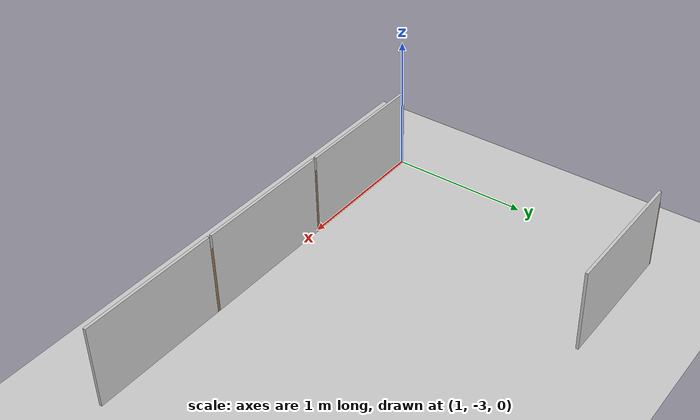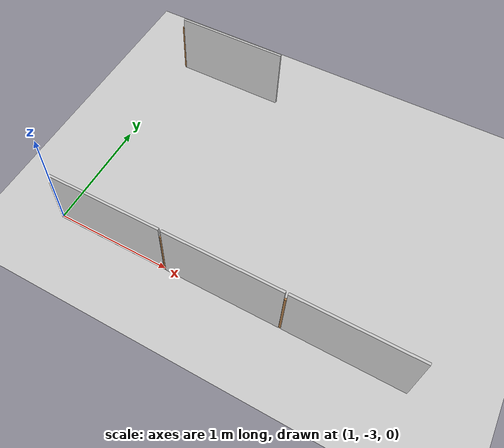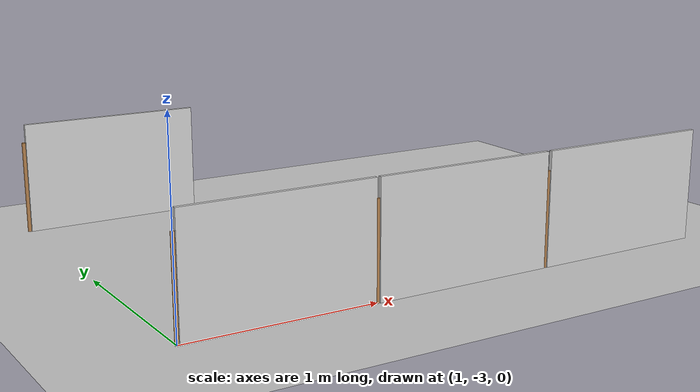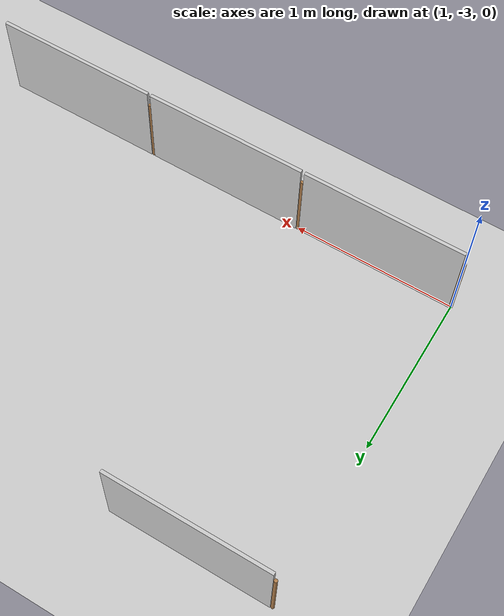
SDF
<sdf version="1.7">
 <world name="default">
  <model name="ground_plane">
   <static>true</static>
   <link name="link">
    <collision name="collision">
     <geometry><plane><normal>0 0 1</normal><size>1 1</size></plane></geometry>
    </collision>
    <visual name="visual">
     <geometry><plane><normal>0 0 1</normal><size>100 100</size></plane></geometry>
     <material>
      <ambient>0.8 0.8 0.8 1</ambient>
      <diffuse>0.8 0.8 0.8 1</diffuse>
      <specular>0.8 0.8 0.8 1</specular>
     </material>
    </visual>
    <inertial>
     <mass>1</mass>
     <inertia><ixx>1</ixx><ixy>0</ixy><ixz>0</ixz><iyy>1</iyy><iyz>0</iyz><izz>1</izz></inertia>
    </inertial>
   </link>
  </model>
  <model name="maze_1_6x5_clone_2_clone_clone_clone_0">
   <frame name="plywood_panel_0_0_b::__model__" attached_to="plywood_panel_0_0_b::main">
    <pose relative_to="__model__">0 0 0 0 -0 1.571</pose>
   </frame>
   <static>true</static>
   <link name="plywood_panel_0_0_b::main">
    <pose relative_to="plywood_panel_0_0_b::__model__">0 0 0 0 -0 0</pose>
    <collision name="collision">
     <pose>0 -0.5 0.3 -1.571 -0 -1.571</pose>
     <geometry><box><size>0.98 0.6 0.02</size></box></geometry>
    </collision>
    <visual name="visual">
     <pose>0.01 -0.01 0 3.14159 -1.57059 3.14159</pose>
     <geometry>
      <mesh>
       <scale>1 1 1</scale>
       <uri>/home/mayank/cognipilot/cranium/src/dream_world/models/plywood_panel/meshes/plywood.dae</uri>
      </mesh>
     </geometry>
    </visual>
   </link>
   <frame name="wooden_joint_0_0_b::__model__" attached_to="wooden_joint_0_0_b::link_0">
    <pose relative_to="__model__">0 0 0 0 -0 0</pose>
   </frame>
   <link name="wooden_joint_0_0_b::link_0">
    <pose relative_to="wooden_joint_0_0_b::__model__">0 0 0.25 0 -0 0</pose>
    <inertial>
     <mass>0.00215981</mass>
     <inertia>
      <ixx>0.00018028</ixx>
      <ixy>0</ixy>
      <ixz>0</ixz>
      <iyy>0.00018028</iyy>
      <iyz>0</iyz>
      <izz>5.8e-07</izz>
     </inertia>
    </inertial>
    <visual name="visual">
     <geometry><cylinder><radius>0.01</radius><length>0.5</length></cylinder></geometry>
     <material>
      <lighting>1</lighting>
      <script><uri>file://media/materials/scripts/gazebo.material</uri><name>Gazebo/Wood</name></script>
      <shader type="pixel"><normal_map>__default__</normal_map></shader>
      <ambient>0.3 0.3 0.3 1</ambient>
      <diffuse>0.7 0.7 0.7 1</diffuse>
      <specular>0.01 0.01 0.01 1</specular>
      <emissive>0 0 0 1</emissive>
     </material>
    </visual>
    <collision name="collision">
     <geometry><cylinder><radius>0.01</radius><length>0.5</length></cylinder></geometry>
     <surface>
      <friction>
       <ode><mu>1</mu><mu2>1</mu2><fdir1>0 0 0</fdir1><slip1>0</slip1><slip2>0</slip2></ode>
       <torsional>
        <coefficient>1</coefficient>
        <patch_radius>0</patch_radius>
        <surface_radius>0</surface_radius>
        <use_patch_radius>1</use_patch_radius>
        <ode><slip>0</slip></ode>
       </torsional>
      </friction>
      <bounce><restitution_coefficient>0</restitution_coefficient><threshold>1e+06</threshold></bounce>
      <contact>
       <collide_without_contact>0</collide_without_contact>
       <collide_without_contact_bitmask>1</collide_without_contact_bitmask>
       <collide_bitmask>1</collide_bitmask>
       <ode>
        <soft_cfm>0</soft_cfm>
        <soft_erp>0.2</soft_erp>
        <kp>1e+13</kp>
        <kd>1</kd>
        <max_vel>0.01</max_vel>
        <min_depth>0</min_depth>
       </ode>
       <bullet>
        <split_impulse>1</split_impulse>
        <split_impulse_penetration_threshold>-0.01</split_impulse_penetration_threshold>
        <soft_cfm>0</soft_cfm>
        <soft_erp>0.2</soft_erp>
        <kp>1e+13</kp>
        <kd>1</kd>
       </bullet>
      </contact>
     </surface>
    </collision>
   </link>
   <static>true</static>
   <pose>1 -3 0 0 0 -4e-06</pose>
  </model>
  <model name="maze_1_6x5_clone_2_clone_clone_clone_1">
   <frame name="plywood_panel_0_0_b::__model__" attached_to="plywood_panel_0_0_b::main">
    <pose relative_to="__model__">0 0 0 0 -0 1.571</pose>
   </frame>
   <static>true</static>
   <link name="plywood_panel_0_0_b::main">
    <pose relative_to="plywood_panel_0_0_b::__model__">0 0 0 0 -0 0</pose>
    <collision name="collision">
     <pose>0 -0.5 0.3 -1.571 -0 -1.571</pose>
     <geometry><box><size>0.98 0.6 0.02</size></box></geometry>
    </collision>
    <visual name="visual">
     <pose>0.01 -0.01 0 3.14159 -1.57059 3.14159</pose>
     <geometry>
      <mesh>
       <scale>1 1 1</scale>
       <uri>/home/mayank/cognipilot/cranium/src/dream_world/models/plywood_panel/meshes/plywood.dae</uri>
      </mesh>
     </geometry>
    </visual>
   </link>
   <frame name="wooden_joint_0_0_b::__model__" attached_to="wooden_joint_0_0_b::link_0">
    <pose relative_to="__model__">0 0 0 0 -0 0</pose>
   </frame>
   <link name="wooden_joint_0_0_b::link_0">
    <pose relative_to="wooden_joint_0_0_b::__model__">0 0 0.25 0 -0 0</pose>
    <inertial>
     <mass>0.00215981</mass>
     <inertia>
      <ixx>0.00018028</ixx>
      <ixy>0</ixy>
      <ixz>0</ixz>
      <iyy>0.00018028</iyy>
      <iyz>0</iyz>
      <izz>5.8e-07</izz>
     </inertia>
    </inertial>
    <visual name="visual">
     <geometry><cylinder><radius>0.01</radius><length>0.5</length></cylinder></geometry>
     <material>
      <lighting>1</lighting>
      <script><uri>file://media/materials/scripts/gazebo.material</uri><name>Gazebo/Wood</name></script>
      <shader type="pixel"><normal_map>__default__</normal_map></shader>
      <ambient>0.3 0.3 0.3 1</ambient>
      <diffuse>0.7 0.7 0.7 1</diffuse>
      <specular>0.01 0.01 0.01 1</specular>
      <emissive>0 0 0 1</emissive>
     </material>
    </visual>
    <collision name="collision">
     <geometry><cylinder><radius>0.01</radius><length>0.5</length></cylinder></geometry>
     <surface>
      <friction>
       <ode><mu>1</mu><mu2>1</mu2><fdir1>0 0 0</fdir1><slip1>0</slip1><slip2>0</slip2></ode>
       <torsional>
        <coefficient>1</coefficient>
        <patch_radius>0</patch_radius>
        <surface_radius>0</surface_radius>
        <use_patch_radius>1</use_patch_radius>
        <ode><slip>0</slip></ode>
       </torsional>
      </friction>
      <bounce><restitution_coefficient>0</restitution_coefficient><threshold>1e+06</threshold></bounce>
      <contact>
       <collide_without_contact>0</collide_without_contact>
       <collide_without_contact_bitmask>1</collide_without_contact_bitmask>
       <collide_bitmask>1</collide_bitmask>
       <ode>
        <soft_cfm>0</soft_cfm>
        <soft_erp>0.2</soft_erp>
        <kp>1e+13</kp>
        <kd>1</kd>
        <max_vel>0.01</max_vel>
        <min_depth>0</min_depth>
       </ode>
       <bullet>
        <split_impulse>1</split_impulse>
        <split_impulse_penetration_threshold>-0.01</split_impulse_penetration_threshold>
        <soft_cfm>0</soft_cfm>
        <soft_erp>0.2</soft_erp>
        <kp>1e+13</kp>
        <kd>1</kd>
       </bullet>
      </contact>
     </surface>
    </collision>
   </link>
   <static>true</static>
   <pose>2 -3 0 0 0 -4e-06</pose>
  </model>
  <model name="maze_1_6x5_clone_2_clone_clone_clone_8">
   <frame name="plywood_panel_0_0_b::__model__" attached_to="plywood_panel_0_0_b::main">
    <pose relative_to="__model__">0 0 0 0 -0 1.571</pose>
   </frame>
   <static>true</static>
   <link name="plywood_panel_0_0_b::main">
    <pose relative_to="plywood_panel_0_0_b::__model__">0 0 0 0 -0 0</pose>
    <collision name="collision">
     <pose>0 -0.5 0.3 -1.571 -0 -1.571</pose>
     <geometry><box><size>0.98 0.6 0.02</size></box></geometry>
    </collision>
    <visual name="visual">
     <pose>0.01 -0.01 0 3.14159 -1.57059 3.14159</pose>
     <geometry>
      <mesh>
       <scale>1 1 1</scale>
       <uri>/home/mayank/cognipilot/cranium/src/dream_world/models/plywood_panel/meshes/plywood.dae</uri>
      </mesh>
     </geometry>
    </visual>
   </link>
   <frame name="wooden_joint_0_0_b::__model__" attached_to="wooden_joint_0_0_b::link_0">
    <pose relative_to="__model__">0 0 0 0 -0 0</pose>
   </frame>
   <link name="wooden_joint_0_0_b::link_0">
    <pose relative_to="wooden_joint_0_0_b::__model__">0 0 0.25 0 -0 0</pose>
    <inertial>
     <mass>0.00215981</mass>
     <inertia>
      <ixx>0.00018028</ixx>
      <ixy>0</ixy>
      <ixz>0</ixz>
      <iyy>0.00018028</iyy>
      <iyz>0</iyz>
      <izz>5.8e-07</izz>
     </inertia>
    </inertial>
    <visual name="visual">
     <geometry><cylinder><radius>0.01</radius><length>0.5</length></cylinder></geometry>
     <material>
      <lighting>1</lighting>
      <script><uri>file://media/materials/scripts/gazebo.material</uri><name>Gazebo/Wood</name></script>
      <shader type="pixel"><normal_map>__default__</normal_map></shader>
      <ambient>0.3 0.3 0.3 1</ambient>
      <diffuse>0.7 0.7 0.7 1</diffuse>
      <specular>0.01 0.01 0.01 1</specular>
      <emissive>0 0 0 1</emissive>
     </material>
    </visual>
    <collision name="collision">
     <geometry><cylinder><radius>0.01</radius><length>0.5</length></cylinder></geometry>
     <surface>
      <friction>
       <ode><mu>1</mu><mu2>1</mu2><fdir1>0 0 0</fdir1><slip1>0</slip1><slip2>0</slip2></ode>
       <torsional>
        <coefficient>1</coefficient>
        <patch_radius>0</patch_radius>
        <surface_radius>0</surface_radius>
        <use_patch_radius>1</use_patch_radius>
        <ode><slip>0</slip></ode>
       </torsional>
      </friction>
      <bounce><restitution_coefficient>0</restitution_coefficient><threshold>1e+06</threshold></bounce>
      <contact>
       <collide_without_contact>0</collide_without_contact>
       <collide_without_contact_bitmask>1</collide_without_contact_bitmask>
       <collide_bitmask>1</collide_bitmask>
       <ode>
        <soft_cfm>0</soft_cfm>
        <soft_erp>0.2</soft_erp>
        <kp>1e+13</kp>
        <kd>1</kd>
        <max_vel>0.01</max_vel>
        <min_depth>0</min_depth>
       </ode>
       <bullet>
        <split_impulse>1</split_impulse>
        <split_impulse_penetration_threshold>-0.01</split_impulse_penetration_threshold>
        <soft_cfm>0</soft_cfm>
        <soft_erp>0.2</soft_erp>
        <kp>1e+13</kp>
        <kd>1</kd>
       </bullet>
      </contact>
     </surface>
    </collision>
   </link>
   <static>true</static>
   <pose>1 -1 0 0 0 -4e-06</pose>
  </model>
  <model name="maze_1_6x5_clone_2_clone_clone_clone_9">
   <frame name="plywood_panel_0_0_b::__model__" attached_to="plywood_panel_0_0_b::main">
    <pose relative_to="__model__">0 0 0 0 -0 1.571</pose>
   </frame>
   <static>true</static>
   <link name="plywood_panel_0_0_b::main">
    <pose relative_to="plywood_panel_0_0_b::__model__">0 0 0 0 -0 0</pose>
    <collision name="collision">
     <pose>0 -0.5 0.3 -1.571 -0 -1.571</pose>
     <geometry><box><size>0.98 0.6 0.02</size></box></geometry>
    </collision>
    <visual name="visual">
     <pose>0.01 -0.01 0 3.14159 -1.57059 3.14159</pose>
     <geometry>
      <mesh>
       <scale>1 1 1</scale>
       <uri>/home/mayank/cognipilot/cranium/src/dream_world/models/plywood_panel/meshes/plywood.dae</uri>
      </mesh>
     </geometry>
    </visual>
   </link>
   <frame name="wooden_joint_0_0_b::__model__" attached_to="wooden_joint_0_0_b::link_0">
    <pose relative_to="__model__">0 0 0 0 -0 0</pose>
   </frame>
   <link name="wooden_joint_0_0_b::link_0">
    <pose relative_to="wooden_joint_0_0_b::__model__">0 0 0.25 0 -0 0</pose>
    <inertial>
     <mass>0.00215981</mass>
     <inertia>
      <ixx>0.00018028</ixx>
      <ixy>0</ixy>
      <ixz>0</ixz>
      <iyy>0.00018028</iyy>
      <iyz>0</iyz>
      <izz>5.8e-07</izz>
     </inertia>
    </inertial>
    <visual name="visual">
     <geometry><cylinder><radius>0.01</radius><length>0.5</length></cylinder></geometry>
     <material>
      <lighting>1</lighting>
      <script><uri>file://media/materials/scripts/gazebo.material</uri><name>Gazebo/Wood</name></script>
      <shader type="pixel"><normal_map>__default__</normal_map></shader>
      <ambient>0.3 0.3 0.3 1</ambient>
      <diffuse>0.7 0.7 0.7 1</diffuse>
      <specular>0.01 0.01 0.01 1</specular>
      <emissive>0 0 0 1</emissive>
     </material>
    </visual>
    <collision name="collision">
     <geometry><cylinder><radius>0.01</radius><length>0.5</length></cylinder></geometry>
     <surface>
      <friction>
       <ode><mu>1</mu><mu2>1</mu2><fdir1>0 0 0</fdir1><slip1>0</slip1><slip2>0</slip2></ode>
       <torsional>
        <coefficient>1</coefficient>
        <patch_radius>0</patch_radius>
        <surface_radius>0</surface_radius>
        <use_patch_radius>1</use_patch_radius>
        <ode><slip>0</slip></ode>
       </torsional>
      </friction>
      <bounce><restitution_coefficient>0</restitution_coefficient><threshold>1e+06</threshold></bounce>
      <contact>
       <collide_without_contact>0</collide_without_contact>
       <collide_without_contact_bitmask>1</collide_without_contact_bitmask>
       <collide_bitmask>1</collide_bitmask>
       <ode>
        <soft_cfm>0</soft_cfm>
        <soft_erp>0.2</soft_erp>
        <kp>1e+13</kp>
        <kd>1</kd>
        <max_vel>0.01</max_vel>
        <min_depth>0</min_depth>
       </ode>
       <bullet>
        <split_impulse>1</split_impulse>
        <split_impulse_penetration_threshold>-0.01</split_impulse_penetration_threshold>
        <soft_cfm>0</soft_cfm>
        <soft_erp>0.2</soft_erp>
        <kp>1e+13</kp>
        <kd>1</kd>
       </bullet>
      </contact>
     </surface>
    </collision>
   </link>
   <static>true</static>
   <pose>3 -3 0 0 0 -4e-06</pose>
  </model>
 </world>
</sdf>
